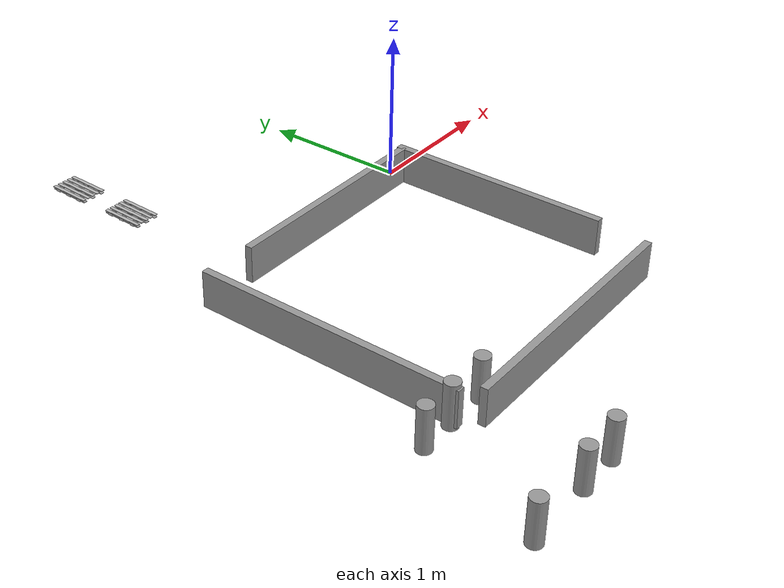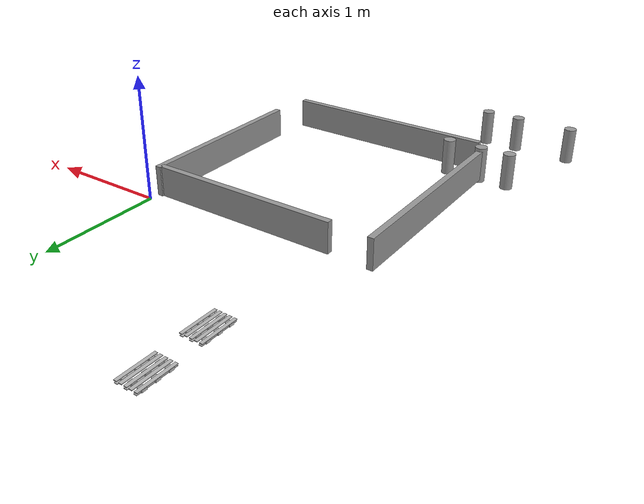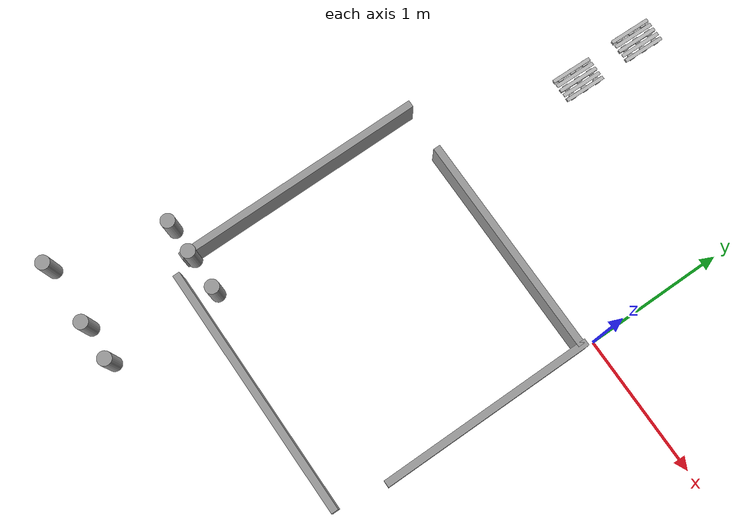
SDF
<sdf version="1.6">
 <world name="default">
  <model name="tunnel_wall">
   <link name="Wall_1">
    <pose>-0.980783 0.049883 0 0 -0 1.5708</pose>
    <visual name="Wall_1_Visual">
     <pose>0 0 0.125 0 -0 0</pose>
     <geometry><box><size>1.8 0.05 0.25</size></box></geometry>
     <material>
      <script><uri>file://media/materials/scripts/gazebo.material</uri><name>Gazebo/Grey</name></script>
      <ambient>1 1 1 1</ambient>
      <diffuse>0.7 0.7 0.7 1</diffuse>
      <specular>0.01 0.01 0.01 1</specular>
      <emissive>0 0 0 1</emissive>
     </material>
    </visual>
    <collision name="Wall_1_Collision">
     <pose>0 0 0.125 0 -0 0</pose>
     <geometry><box><size>1.8 0.05 0.25</size></box></geometry>
     <surface>
      <friction>
       <ode><mu>1</mu><mu2>1</mu2><fdir1>0 0 0</fdir1><slip1>0</slip1><slip2>0</slip2></ode>
       <torsional>
        <coefficient>1</coefficient>
        <patch_radius>0</patch_radius>
        <surface_radius>0</surface_radius>
        <use_patch_radius>1</use_patch_radius>
        <ode><slip>0</slip></ode>
       </torsional>
      </friction>
      <bounce><restitution_coefficient>0</restitution_coefficient><threshold>1e+06</threshold></bounce>
      <contact>
       <collide_without_contact>0</collide_without_contact>
       <collide_without_contact_bitmask>1</collide_without_contact_bitmask>
       <collide_bitmask>1</collide_bitmask>
       <ode>
        <soft_cfm>0</soft_cfm>
        <soft_erp>0.2</soft_erp>
        <kp>1e+13</kp>
        <kd>1</kd>
        <max_vel>0.01</max_vel>
        <min_depth>0</min_depth>
       </ode>
       <bullet>
        <split_impulse>1</split_impulse>
        <split_impulse_penetration_threshold>-0.01</split_impulse_penetration_threshold>
        <soft_cfm>0</soft_cfm>
        <soft_erp>0.2</soft_erp>
        <kp>1e+13</kp>
        <kd>1</kd>
       </bullet>
      </contact>
     </surface>
    </collision>
   </link>
   <link name="Wall_2">
    <pose>0 -0.935438 0 0 -0 0</pose>
    <visual name="Wall_2_Visual">
     <pose>0 0 0.125 0 -0 0</pose>
     <geometry><box><size>1.8 0.05 0.25</size></box></geometry>
     <material>
      <script><uri>file://media/materials/scripts/gazebo.material</uri><name>Gazebo/Grey</name></script>
      <ambient>1 1 1 1</ambient>
      <diffuse>0.7 0.7 0.7 1</diffuse>
      <specular>0.01 0.01 0.01 1</specular>
      <emissive>0 0 0 1</emissive>
     </material>
    </visual>
    <collision name="Wall_2_Collision">
     <pose>0 0 0.125 0 -0 0</pose>
     <geometry><box><size>1.8 0.05 0.25</size></box></geometry>
     <surface>
      <friction>
       <ode><mu>1</mu><mu2>1</mu2><fdir1>0 0 0</fdir1><slip1>0</slip1><slip2>0</slip2></ode>
       <torsional>
        <coefficient>1</coefficient>
        <patch_radius>0</patch_radius>
        <surface_radius>0</surface_radius>
        <use_patch_radius>1</use_patch_radius>
        <ode><slip>0</slip></ode>
       </torsional>
      </friction>
      <bounce><restitution_coefficient>0</restitution_coefficient><threshold>1e+06</threshold></bounce>
      <contact>
       <collide_without_contact>0</collide_without_contact>
       <collide_without_contact_bitmask>1</collide_without_contact_bitmask>
       <collide_bitmask>1</collide_bitmask>
       <ode>
        <soft_cfm>0</soft_cfm>
        <soft_erp>0.2</soft_erp>
        <kp>1e+13</kp>
        <kd>1</kd>
        <max_vel>0.01</max_vel>
        <min_depth>0</min_depth>
       </ode>
       <bullet>
        <split_impulse>1</split_impulse>
        <split_impulse_penetration_threshold>-0.01</split_impulse_penetration_threshold>
        <soft_cfm>0</soft_cfm>
        <soft_erp>0.2</soft_erp>
        <kp>1e+13</kp>
        <kd>1</kd>
       </bullet>
      </contact>
     </surface>
    </collision>
   </link>
   <link name="Wall_3">
    <pose>0.943396 0.183669 0 0 -0 1.5708</pose>
    <inertial>
     <inertia><ixx>nan</ixx><ixy>0</ixy><ixz>0</ixz><iyy>nan</iyy><iyz>0</iyz><izz>nan</izz></inertia>
     <mass>0</mass>
    </inertial>
    <visual name="Wall_3_Visual">
     <pose>0 0 0.125 0 -0 0</pose>
     <geometry><box><size>1.53699 0.05 0.25</size></box></geometry>
     <material>
      <script><uri>file://media/materials/scripts/gazebo.material</uri><name>Gazebo/Grey</name></script>
      <ambient>1 1 1 1</ambient>
      <diffuse>0.7 0.7 0.7 1</diffuse>
      <specular>0.01 0.01 0.01 1</specular>
      <emissive>0 0 0 1</emissive>
     </material>
    </visual>
    <collision name="Wall_3_Collision">
     <pose>0 0 0.125 0 -0 0</pose>
     <geometry><box><size>1.53699 0.05 0.25</size></box></geometry>
     <surface>
      <friction>
       <ode><mu>1</mu><mu2>1</mu2><fdir1>0 0 0</fdir1><slip1>0</slip1><slip2>0</slip2></ode>
       <torsional>
        <coefficient>1</coefficient>
        <patch_radius>0</patch_radius>
        <surface_radius>0</surface_radius>
        <use_patch_radius>1</use_patch_radius>
        <ode><slip>0</slip></ode>
       </torsional>
      </friction>
      <bounce><restitution_coefficient>0</restitution_coefficient><threshold>1e+06</threshold></bounce>
      <contact>
       <collide_without_contact>0</collide_without_contact>
       <collide_without_contact_bitmask>1</collide_without_contact_bitmask>
       <collide_bitmask>1</collide_bitmask>
       <ode>
        <soft_cfm>0</soft_cfm>
        <soft_erp>0.2</soft_erp>
        <kp>1e+13</kp>
        <kd>1</kd>
        <max_vel>0.01</max_vel>
        <min_depth>0</min_depth>
       </ode>
       <bullet>
        <split_impulse>1</split_impulse>
        <split_impulse_penetration_threshold>-0.01</split_impulse_penetration_threshold>
        <soft_cfm>0</soft_cfm>
        <soft_erp>0.2</soft_erp>
        <kp>1e+13</kp>
        <kd>1</kd>
       </bullet>
      </contact>
     </surface>
    </collision>
   </link>
   <link name="Wall_4">
    <pose>0.15 0.915 0 0 -0 3.14159</pose>
    <visual name="Wall_4_Visual">
     <pose>0 0 0.125 0 -0 0</pose>
     <geometry><box><size>1.58 0.05 0.25</size></box></geometry>
     <material>
      <script><uri>file://media/materials/scripts/gazebo.material</uri><name>Gazebo/Grey</name></script>
      <ambient>1 1 1 1</ambient>
      <diffuse>0.7 0.7 0.7 1</diffuse>
      <specular>0.01 0.01 0.01 1</specular>
      <emissive>0 0 0 1</emissive>
     </material>
    </visual>
    <collision name="Wall_4_Collision">
     <pose>0 0 0.125 0 -0 0</pose>
     <geometry><box><size>1.58 0.05 0.25</size></box></geometry>
     <surface>
      <friction>
       <ode><mu>1</mu><mu2>1</mu2><fdir1>0 0 0</fdir1><slip1>0</slip1><slip2>0</slip2></ode>
       <torsional>
        <coefficient>1</coefficient>
        <patch_radius>0</patch_radius>
        <surface_radius>0</surface_radius>
        <use_patch_radius>1</use_patch_radius>
        <ode><slip>0</slip></ode>
       </torsional>
      </friction>
      <bounce><restitution_coefficient>0</restitution_coefficient><threshold>1e+06</threshold></bounce>
      <contact>
       <collide_without_contact>0</collide_without_contact>
       <collide_without_contact_bitmask>1</collide_without_contact_bitmask>
       <collide_bitmask>1</collide_bitmask>
       <ode>
        <soft_cfm>0</soft_cfm>
        <soft_erp>0.2</soft_erp>
        <kp>1e+13</kp>
        <kd>1</kd>
        <max_vel>0.01</max_vel>
        <min_depth>0</min_depth>
       </ode>
       <bullet>
        <split_impulse>1</split_impulse>
        <split_impulse_penetration_threshold>-0.01</split_impulse_penetration_threshold>
        <soft_cfm>0</soft_cfm>
        <soft_erp>0.2</soft_erp>
        <kp>1e+13</kp>
        <kd>1</kd>
       </bullet>
      </contact>
     </surface>
    </collision>
   </link>
   <static>1</static>
   <pose>-0.964699 -1.03574 0 0 -0 0</pose>
  </model>
  <model name="tunnel_obstacle">
   <link name="obstacle_1">
    <pose>-0.61823 -1.5 0.125 0 -0 0</pose>
    <inertial>
     <mass>0.0416663</mass>
     <inertia>
      <ixx>0.00098188</ixx>
      <ixy>0</ixy>
      <ixz>0</ixz>
      <iyy>0.00098188</iyy>
      <iyz>0</iyz>
      <izz>0.00046751</izz>
     </inertia>
    </inertial>
    <visual name="visual">
     <geometry><cylinder><radius>0.05</radius><length>0.3</length></cylinder></geometry>
     <material>
      <lighting>1</lighting>
      <script><uri>file://media/materials/scripts/gazebo.material</uri><name>Gazebo/Grey</name></script>
      <ambient>0.3 0.3 0.3 1</ambient>
      <diffuse>0.7 0.7 0.7 1</diffuse>
      <specular>0.01 0.01 0.01 1</specular>
      <emissive>0 0 0 1</emissive>
      <shader type="pixel"><normal_map>__default__</normal_map></shader>
     </material>
    </visual>
    <collision name="collision">
     <geometry><cylinder><radius>0.05</radius><length>0.3</length></cylinder></geometry>
     <surface>
      <friction>
       <ode><mu>1</mu><mu2>1</mu2><fdir1>0 0 0</fdir1><slip1>0</slip1><slip2>0</slip2></ode>
       <torsional>
        <coefficient>1</coefficient>
        <patch_radius>0</patch_radius>
        <surface_radius>0</surface_radius>
        <use_patch_radius>1</use_patch_radius>
        <ode><slip>0</slip></ode>
       </torsional>
      </friction>
      <bounce><restitution_coefficient>0</restitution_coefficient><threshold>1e+06</threshold></bounce>
      <contact>
       <collide_without_contact>0</collide_without_contact>
       <collide_without_contact_bitmask>1</collide_without_contact_bitmask>
       <collide_bitmask>1</collide_bitmask>
       <ode>
        <soft_cfm>0</soft_cfm>
        <soft_erp>0.2</soft_erp>
        <kp>1e+13</kp>
        <kd>1</kd>
        <max_vel>0.01</max_vel>
        <min_depth>0</min_depth>
       </ode>
       <bullet>
        <split_impulse>1</split_impulse>
        <split_impulse_penetration_threshold>-0.01</split_impulse_penetration_threshold>
        <soft_cfm>0</soft_cfm>
        <soft_erp>0.2</soft_erp>
        <kp>1e+13</kp>
        <kd>1</kd>
       </bullet>
      </contact>
     </surface>
    </collision>
   </link>
   <link name="obstacle_2">
    <pose>-1.36518 -1.5 0.125 0 -0 0</pose>
    <inertial>
     <mass>0.0416663</mass>
     <inertia>
      <ixx>0.00098188</ixx>
      <ixy>0</ixy>
      <ixz>0</ixz>
      <iyy>0.00098188</iyy>
      <iyz>0</iyz>
      <izz>0.00046751</izz>
     </inertia>
    </inertial>
    <visual name="visual">
     <geometry><cylinder><radius>0.05</radius><length>0.3</length></cylinder></geometry>
     <material>
      <lighting>1</lighting>
      <script><uri>file://media/materials/scripts/gazebo.material</uri><name>Gazebo/Grey</name></script>
      <ambient>0.3 0.3 0.3 1</ambient>
      <diffuse>0.7 0.7 0.7 1</diffuse>
      <specular>0.01 0.01 0.01 1</specular>
      <emissive>0 0 0 1</emissive>
      <shader type="pixel"><normal_map>__default__</normal_map></shader>
     </material>
    </visual>
    <collision name="collision">
     <geometry><cylinder><radius>0.05</radius><length>0.3</length></cylinder></geometry>
     <surface>
      <friction>
       <ode><mu>1</mu><mu2>1</mu2><fdir1>0 0 0</fdir1><slip1>0</slip1><slip2>0</slip2></ode>
       <torsional>
        <coefficient>1</coefficient>
        <patch_radius>0</patch_radius>
        <surface_radius>0</surface_radius>
        <use_patch_radius>1</use_patch_radius>
        <ode><slip>0</slip></ode>
       </torsional>
      </friction>
      <bounce><restitution_coefficient>0</restitution_coefficient><threshold>1e+06</threshold></bounce>
      <contact>
       <collide_without_contact>0</collide_without_contact>
       <collide_without_contact_bitmask>1</collide_without_contact_bitmask>
       <collide_bitmask>1</collide_bitmask>
       <ode>
        <soft_cfm>0</soft_cfm>
        <soft_erp>0.2</soft_erp>
        <kp>1e+13</kp>
        <kd>1</kd>
        <max_vel>0.01</max_vel>
        <min_depth>0</min_depth>
       </ode>
       <bullet>
        <split_impulse>1</split_impulse>
        <split_impulse_penetration_threshold>-0.01</split_impulse_penetration_threshold>
        <soft_cfm>0</soft_cfm>
        <soft_erp>0.2</soft_erp>
        <kp>1e+13</kp>
        <kd>1</kd>
       </bullet>
      </contact>
     </surface>
    </collision>
   </link>
   <link name="obstacle_3">
    <pose>-0.9 -1.5 0.125 0 -0 0</pose>
    <inertial>
     <mass>0.0416663</mass>
     <inertia>
      <ixx>0.00098188</ixx>
      <ixy>0</ixy>
      <ixz>0</ixz>
      <iyy>0.00098188</iyy>
      <iyz>0</iyz>
      <izz>0.00046751</izz>
     </inertia>
    </inertial>
    <visual name="visual">
     <geometry><cylinder><radius>0.05</radius><length>0.3</length></cylinder></geometry>
     <material>
      <lighting>1</lighting>
      <script><uri>file://media/materials/scripts/gazebo.material</uri><name>Gazebo/Grey</name></script>
      <ambient>0.3 0.3 0.3 1</ambient>
      <diffuse>0.7 0.7 0.7 1</diffuse>
      <specular>0.01 0.01 0.01 1</specular>
      <emissive>0 0 0 1</emissive>
      <shader type="pixel"><normal_map>__default__</normal_map></shader>
     </material>
    </visual>
    <collision name="collision">
     <geometry><cylinder><radius>0.05</radius><length>0.3</length></cylinder></geometry>
     <surface>
      <friction>
       <ode><mu>1</mu><mu2>1</mu2><fdir1>0 0 0</fdir1><slip1>0</slip1><slip2>0</slip2></ode>
       <torsional>
        <coefficient>1</coefficient>
        <patch_radius>0</patch_radius>
        <surface_radius>0</surface_radius>
        <use_patch_radius>1</use_patch_radius>
        <ode><slip>0</slip></ode>
       </torsional>
      </friction>
      <bounce><restitution_coefficient>0</restitution_coefficient><threshold>1e+06</threshold></bounce>
      <contact>
       <collide_without_contact>0</collide_without_contact>
       <collide_without_contact_bitmask>1</collide_without_contact_bitmask>
       <collide_bitmask>1</collide_bitmask>
       <ode>
        <soft_cfm>0</soft_cfm>
        <soft_erp>0.2</soft_erp>
        <kp>1e+13</kp>
        <kd>1</kd>
        <max_vel>0.01</max_vel>
        <min_depth>0</min_depth>
       </ode>
       <bullet>
        <split_impulse>1</split_impulse>
        <split_impulse_penetration_threshold>-0.01</split_impulse_penetration_threshold>
        <soft_cfm>0</soft_cfm>
        <soft_erp>0.2</soft_erp>
        <kp>1e+13</kp>
        <kd>1</kd>
       </bullet>
      </contact>
     </surface>
    </collision>
   </link>
   <link name="obstacle_4">
    <pose>-1.14094 -0.7 0.125 0 -0 0</pose>
    <inertial>
     <mass>0.0416663</mass>
     <inertia>
      <ixx>0.00098188</ixx>
      <ixy>0</ixy>
      <ixz>0</ixz>
      <iyy>0.00098188</iyy>
      <iyz>0</iyz>
      <izz>0.00046751</izz>
     </inertia>
    </inertial>
    <visual name="visual">
     <geometry><cylinder><radius>0.05</radius><length>0.3</length></cylinder></geometry>
     <material>
      <lighting>1</lighting>
      <script><uri>file://media/materials/scripts/gazebo.material</uri><name>Gazebo/Grey</name></script>
      <ambient>0.3 0.3 0.3 1</ambient>
      <diffuse>0.7 0.7 0.7 1</diffuse>
      <specular>0.01 0.01 0.01 1</specular>
      <emissive>0 0 0 1</emissive>
      <shader type="pixel"><normal_map>__default__</normal_map></shader>
     </material>
    </visual>
    <collision name="collision">
     <geometry><cylinder><radius>0.05</radius><length>0.3</length></cylinder></geometry>
     <surface>
      <friction>
       <ode><mu>1</mu><mu2>1</mu2><fdir1>0 0 0</fdir1><slip1>0</slip1><slip2>0</slip2></ode>
       <torsional>
        <coefficient>1</coefficient>
        <patch_radius>0</patch_radius>
        <surface_radius>0</surface_radius>
        <use_patch_radius>1</use_patch_radius>
        <ode><slip>0</slip></ode>
       </torsional>
      </friction>
      <bounce><restitution_coefficient>0</restitution_coefficient><threshold>1e+06</threshold></bounce>
      <contact>
       <collide_without_contact>0</collide_without_contact>
       <collide_without_contact_bitmask>1</collide_without_contact_bitmask>
       <collide_bitmask>1</collide_bitmask>
       <ode>
        <soft_cfm>0</soft_cfm>
        <soft_erp>0.2</soft_erp>
        <kp>1e+13</kp>
        <kd>1</kd>
        <max_vel>0.01</max_vel>
        <min_depth>0</min_depth>
       </ode>
       <bullet>
        <split_impulse>1</split_impulse>
        <split_impulse_penetration_threshold>-0.01</split_impulse_penetration_threshold>
        <soft_cfm>0</soft_cfm>
        <soft_erp>0.2</soft_erp>
        <kp>1e+13</kp>
        <kd>1</kd>
       </bullet>
      </contact>
     </surface>
    </collision>
   </link>
   <link name="obstacle_5">
    <pose>-0.61823 -0.7 0.125 0 -0 0</pose>
    <inertial>
     <mass>0.0416663</mass>
     <inertia>
      <ixx>0.00098188</ixx>
      <ixy>0</ixy>
      <ixz>0</ixz>
      <iyy>0.00098188</iyy>
      <iyz>0</iyz>
      <izz>0.00046751</izz>
     </inertia>
    </inertial>
    <visual name="visual">
     <geometry><cylinder><radius>0.05</radius><length>0.3</length></cylinder></geometry>
     <material>
      <lighting>1</lighting>
      <script><uri>file://media/materials/scripts/gazebo.material</uri><name>Gazebo/Grey</name></script>
      <ambient>0.3 0.3 0.3 1</ambient>
      <diffuse>0.7 0.7 0.7 1</diffuse>
      <specular>0.01 0.01 0.01 1</specular>
      <emissive>0 0 0 1</emissive>
      <shader type="pixel"><normal_map>__default__</normal_map></shader>
     </material>
    </visual>
    <collision name="collision">
     <geometry><cylinder><radius>0.05</radius><length>0.3</length></cylinder></geometry>
     <surface>
      <friction>
       <ode><mu>1</mu><mu2>1</mu2><fdir1>0 0 0</fdir1><slip1>0</slip1><slip2>0</slip2></ode>
       <torsional>
        <coefficient>1</coefficient>
        <patch_radius>0</patch_radius>
        <surface_radius>0</surface_radius>
        <use_patch_radius>1</use_patch_radius>
        <ode><slip>0</slip></ode>
       </torsional>
      </friction>
      <bounce><restitution_coefficient>0</restitution_coefficient><threshold>1e+06</threshold></bounce>
      <contact>
       <collide_without_contact>0</collide_without_contact>
       <collide_without_contact_bitmask>1</collide_without_contact_bitmask>
       <collide_bitmask>1</collide_bitmask>
       <ode>
        <soft_cfm>0</soft_cfm>
        <soft_erp>0.2</soft_erp>
        <kp>1e+13</kp>
        <kd>1</kd>
        <max_vel>0.01</max_vel>
        <min_depth>0</min_depth>
       </ode>
       <bullet>
        <split_impulse>1</split_impulse>
        <split_impulse_penetration_threshold>-0.01</split_impulse_penetration_threshold>
        <soft_cfm>0</soft_cfm>
        <soft_erp>0.2</soft_erp>
        <kp>1e+13</kp>
        <kd>1</kd>
       </bullet>
      </contact>
     </surface>
    </collision>
   </link>
   <link name="obstacle_6">
    <pose>-0.9 -0.7 0.125 0 -0 0</pose>
    <inertial>
     <mass>0.0416663</mass>
     <inertia>
      <ixx>0.00098188</ixx>
      <ixy>0</ixy>
      <ixz>0</ixz>
      <iyy>0.00098188</iyy>
      <iyz>0</iyz>
      <izz>0.00046751</izz>
     </inertia>
    </inertial>
    <visual name="visual">
     <geometry><cylinder><radius>0.05</radius><length>0.3</length></cylinder></geometry>
     <material>
      <lighting>1</lighting>
      <script><uri>file://media/materials/scripts/gazebo.material</uri><name>Gazebo/Grey</name></script>
      <ambient>0.3 0.3 0.3 1</ambient>
      <diffuse>0.7 0.7 0.7 1</diffuse>
      <specular>0.01 0.01 0.01 1</specular>
      <emissive>0 0 0 1</emissive>
      <shader type="pixel"><normal_map>__default__</normal_map></shader>
     </material>
    </visual>
    <collision name="collision">
     <geometry><cylinder><radius>0.05</radius><length>0.3</length></cylinder></geometry>
     <surface>
      <friction>
       <ode><mu>1</mu><mu2>1</mu2><fdir1>0 0 0</fdir1><slip1>0</slip1><slip2>0</slip2></ode>
       <torsional>
        <coefficient>1</coefficient>
        <patch_radius>0</patch_radius>
        <surface_radius>0</surface_radius>
        <use_patch_radius>1</use_patch_radius>
        <ode><slip>0</slip></ode>
       </torsional>
      </friction>
      <bounce><restitution_coefficient>0</restitution_coefficient><threshold>1e+06</threshold></bounce>
      <contact>
       <collide_without_contact>0</collide_without_contact>
       <collide_without_contact_bitmask>1</collide_without_contact_bitmask>
       <collide_bitmask>1</collide_bitmask>
       <ode>
        <soft_cfm>0</soft_cfm>
        <soft_erp>0.2</soft_erp>
        <kp>1e+13</kp>
        <kd>1</kd>
        <max_vel>0.01</max_vel>
        <min_depth>0</min_depth>
       </ode>
       <bullet>
        <split_impulse>1</split_impulse>
        <split_impulse_penetration_threshold>-0.01</split_impulse_penetration_threshold>
        <soft_cfm>0</soft_cfm>
        <soft_erp>0.2</soft_erp>
        <kp>1e+13</kp>
        <kd>1</kd>
       </bullet>
      </contact>
     </surface>
    </collision>
   </link>
   <static>1</static>
   <pose>-1.04145 -1.12671 0 0 -0 0</pose>
  </model>
  <model name="palette2">
   <pose>-1.5 1.5 0.0 0 -0 1.55</pose>
   <static>true</static>
   <link name="base">
    <visual name="top_plank_1">
     <pose>0 0.08 0.018 0 0 0</pose>
     <geometry><box><size>0.3 0.025 0.005</size></box></geometry>
    </visual>
    <visual name="top_plank_2">
     <pose>0 0.04 0.018 0 0 0</pose>
     <geometry><box><size>0.3 0.025 0.005</size></box></geometry>
    </visual>
    <visual name="top_plank_3">
     <pose>0 0.00 0.018 0 0 0</pose>
     <geometry><box><size>0.3 0.025 0.005</size></box></geometry>
    </visual>
    <visual name="top_plank_4">
     <pose>0 -0.04 0.018 0 0 0</pose>
     <geometry><box><size>0.3 0.025 0.005</size></box></geometry>
    </visual>
    <visual name="top_plank_5">
     <pose>0 -0.08 0.018 0 0 0</pose>
     <geometry><box><size>0.3 0.025 0.005</size></box></geometry>
    </visual>
    <visual name="block_left">
     <pose>-0.1 0.075 0.009 0 0 0</pose>
     <geometry><box><size>0.0375 0.0375 0.018</size></box></geometry>
    </visual>
    <visual name="block_middle">
     <pose>0 0.075 0.009 0 0 0</pose>
     <geometry><box><size>0.0375 0.0375 0.018</size></box></geometry>
    </visual>
    <visual name="block_right">
     <pose>0.1 0.075 0.009 0 0 0</pose>
     <geometry><box><size>0.0375 0.0375 0.018</size></box></geometry>
    </visual>
    <visual name="block_left2">
     <pose>-0.1 0.0 0.009 0 0 0</pose>
     <geometry><box><size>0.0375 0.0375 0.018</size></box></geometry>
    </visual>
    <visual name="block_middle2">
     <pose>0 0.0 0.009 0 0 0</pose>
     <geometry><box><size>0.0375 0.0375 0.018</size></box></geometry>
    </visual>
    <visual name="block_right2">
     <pose>0.1 0.0 0.009 0 0 0</pose>
     <geometry><box><size>0.0375 0.0375 0.018</size></box></geometry>
    </visual>
    <visual name="block_left3">
     <pose>-0.1 -0.075 0.009 0 0 0</pose>
     <geometry><box><size>0.0375 0.0375 0.018</size></box></geometry>
    </visual>
    <visual name="block_middle3">
     <pose>0 -0.075 0.009 0 0 0</pose>
     <geometry><box><size>0.0375 0.0375 0.018</size></box></geometry>
    </visual>
    <visual name="block_right3">
     <pose>0.1 -0.075 0.009 0 0 0</pose>
     <geometry><box><size>0.0375 0.0375 0.018</size></box></geometry>
    </visual>
    <visual name="bottom_plank_1">
     <pose>0 0.075 0.002 0 0 0</pose>
     <geometry><box><size>0.3 0.025 0.004</size></box></geometry>
    </visual>
    <visual name="bottom_plank_2">
     <pose>0 0.0 0.002 0 0 0</pose>
     <geometry><box><size>0.3 0.025 0.004</size></box></geometry>
    </visual>
    <visual name="bottom_plank_3">
     <pose>0 -0.075 0.002 0 0 0</pose>
     <geometry><box><size>0.3 0.025 0.004</size></box></geometry>
    </visual>
   </link>
  </model>
  <model name="palette">
   <pose>-1.5 1 0.0 0 -0 1.55</pose>
   <static>true</static>
   <link name="base">
    <visual name="top_plank_1">
     <pose>0 0.08 0.018 0 0 0</pose>
     <geometry><box><size>0.3 0.025 0.005</size></box></geometry>
    </visual>
    <visual name="top_plank_2">
     <pose>0 0.04 0.018 0 0 0</pose>
     <geometry><box><size>0.3 0.025 0.005</size></box></geometry>
    </visual>
    <visual name="top_plank_3">
     <pose>0 0.00 0.018 0 0 0</pose>
     <geometry><box><size>0.3 0.025 0.005</size></box></geometry>
    </visual>
    <visual name="top_plank_4">
     <pose>0 -0.04 0.018 0 0 0</pose>
     <geometry><box><size>0.3 0.025 0.005</size></box></geometry>
    </visual>
    <visual name="top_plank_5">
     <pose>0 -0.08 0.018 0 0 0</pose>
     <geometry><box><size>0.3 0.025 0.005</size></box></geometry>
    </visual>
    <visual name="block_left">
     <pose>-0.1 0.075 0.009 0 0 0</pose>
     <geometry><box><size>0.0375 0.0375 0.018</size></box></geometry>
    </visual>
    <visual name="block_middle">
     <pose>0 0.075 0.009 0 0 0</pose>
     <geometry><box><size>0.0375 0.0375 0.018</size></box></geometry>
    </visual>
    <visual name="block_right">
     <pose>0.1 0.075 0.009 0 0 0</pose>
     <geometry><box><size>0.0375 0.0375 0.018</size></box></geometry>
    </visual>
    <visual name="block_left2">
     <pose>-0.1 0.0 0.009 0 0 0</pose>
     <geometry><box><size>0.0375 0.0375 0.018</size></box></geometry>
    </visual>
    <visual name="block_middle2">
     <pose>0 0.0 0.009 0 0 0</pose>
     <geometry><box><size>0.0375 0.0375 0.018</size></box></geometry>
    </visual>
    <visual name="block_right2">
     <pose>0.1 0.0 0.009 0 0 0</pose>
     <geometry><box><size>0.0375 0.0375 0.018</size></box></geometry>
    </visual>
    <visual name="block_left3">
     <pose>-0.1 -0.075 0.009 0 0 0</pose>
     <geometry><box><size>0.0375 0.0375 0.018</size></box></geometry>
    </visual>
    <visual name="block_middle3">
     <pose>0 -0.075 0.009 0 0 0</pose>
     <geometry><box><size>0.0375 0.0375 0.018</size></box></geometry>
    </visual>
    <visual name="block_right3">
     <pose>0.1 -0.075 0.009 0 0 0</pose>
     <geometry><box><size>0.0375 0.0375 0.018</size></box></geometry>
    </visual>
    <visual name="bottom_plank_1">
     <pose>0 0.075 0.002 0 0 0</pose>
     <geometry><box><size>0.3 0.025 0.004</size></box></geometry>
    </visual>
    <visual name="bottom_plank_2">
     <pose>0 0.0 0.002 0 0 0</pose>
     <geometry><box><size>0.3 0.025 0.004</size></box></geometry>
    </visual>
    <visual name="bottom_plank_3">
     <pose>0 -0.075 0.002 0 0 0</pose>
     <geometry><box><size>0.3 0.025 0.004</size></box></geometry>
    </visual>
   </link>
  </model>
 </world>
</sdf>
